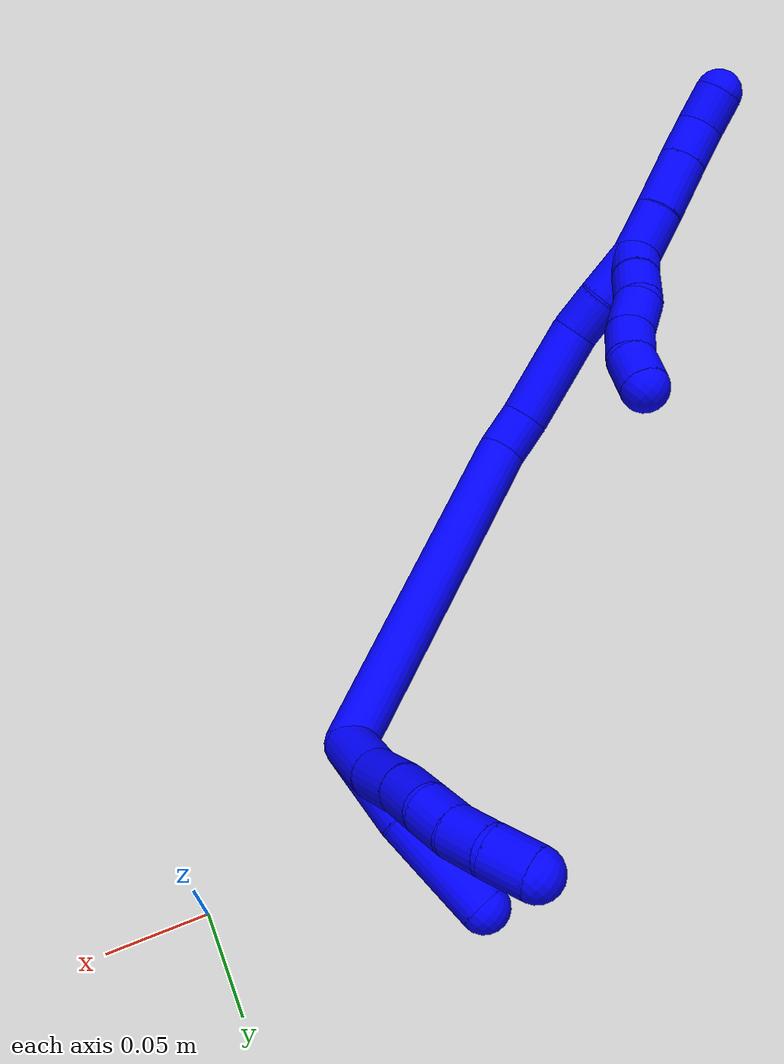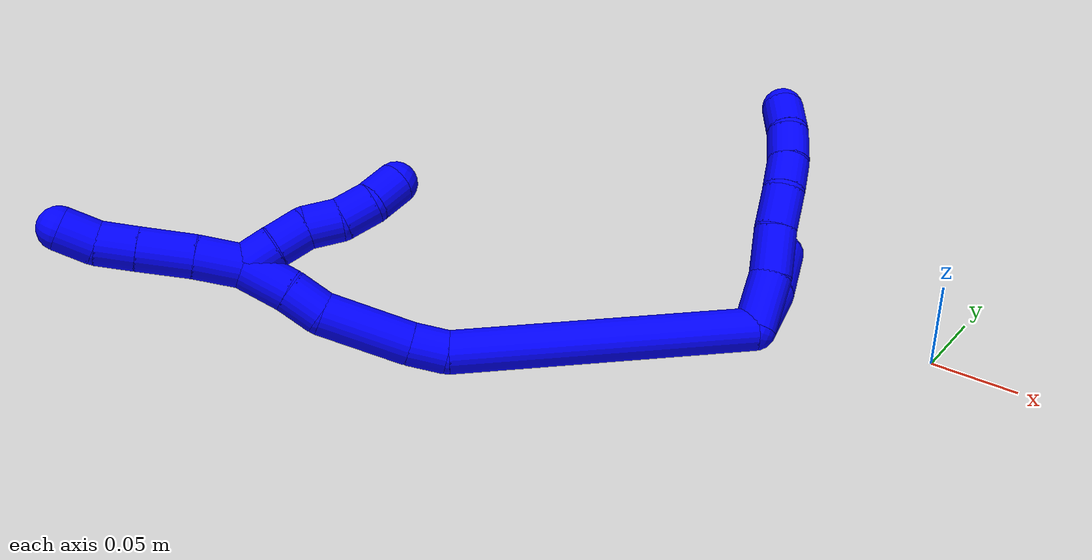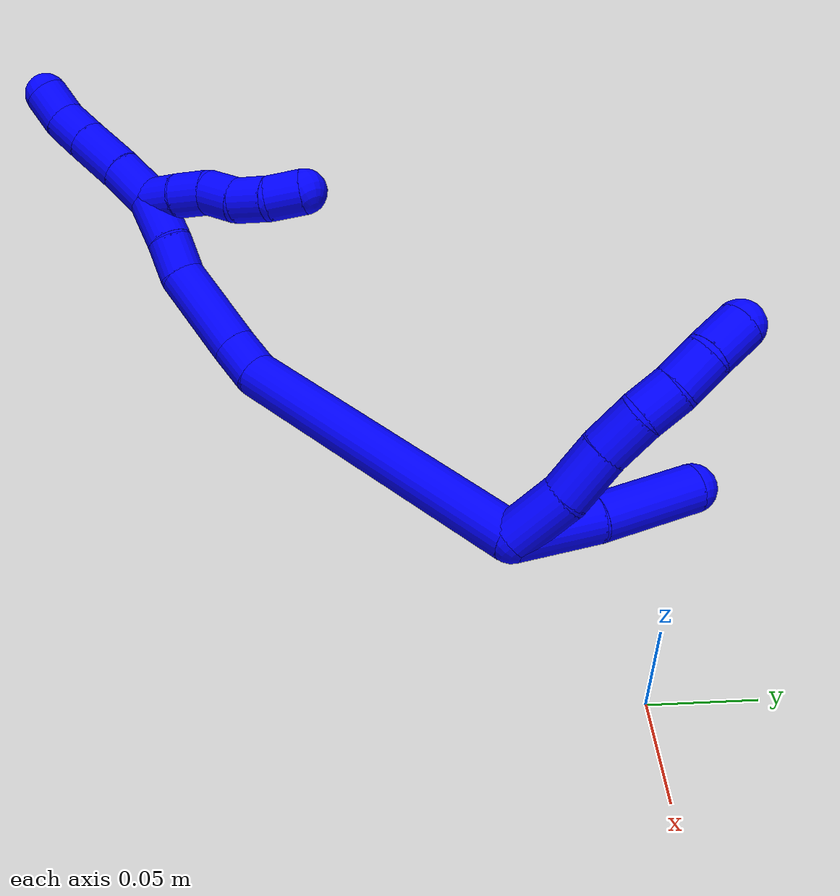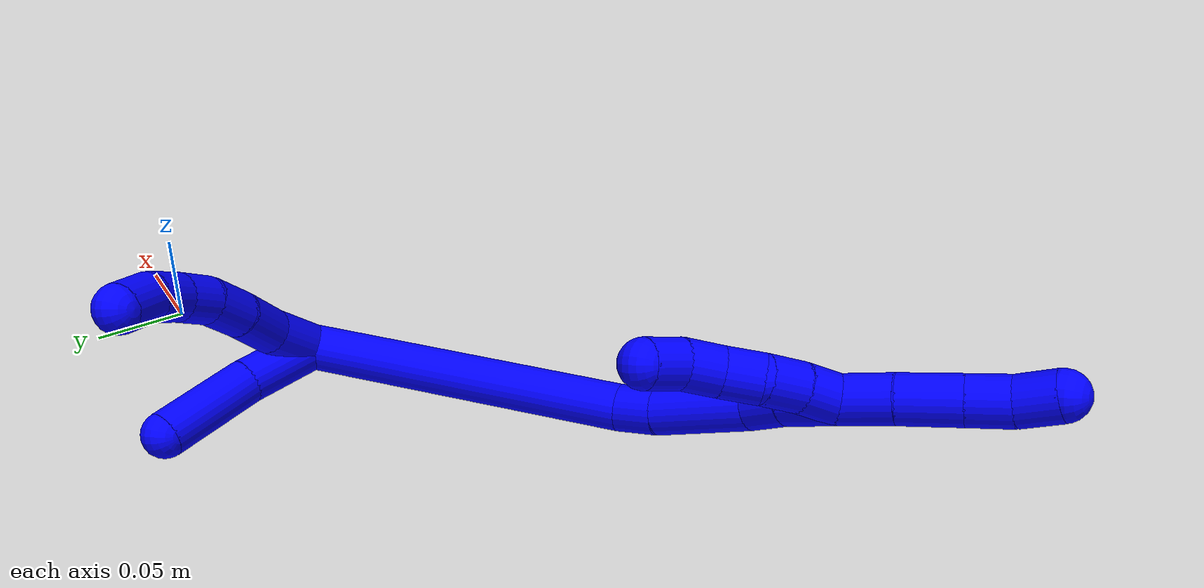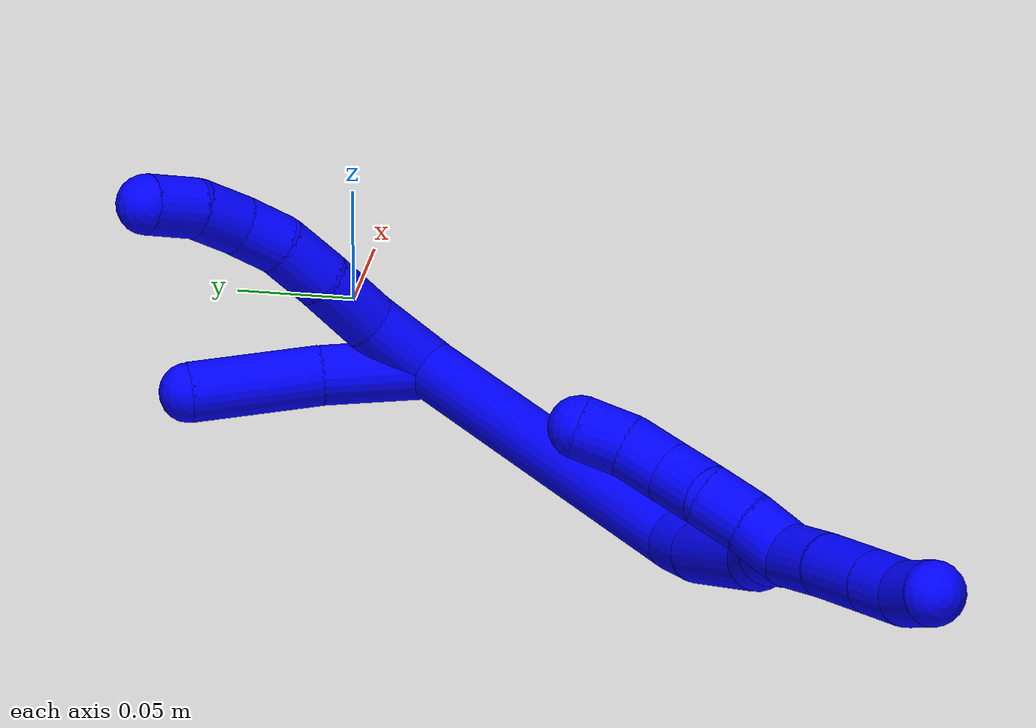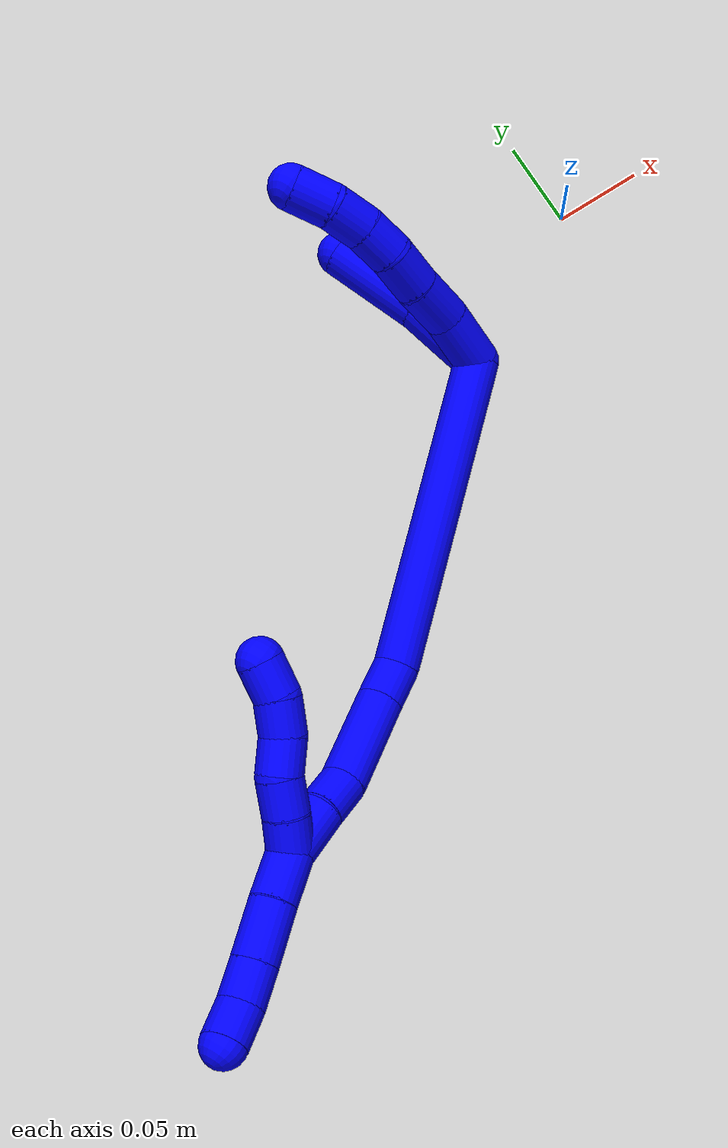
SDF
<sdf version="1.7">
 <world name="default">
  <model name="photoneo_s_sensor">
   <static>1</static>
   <pose>0 0 2 1.57079 1.57079 3.14159</pose>
   <link name="link">
    <inertial><mass>0.1</mass></inertial>
    <sensor name="sensor" type="depth">
     <update_rate>30</update_rate>
     <camera>
      <horizontal_fov>1.22</horizontal_fov>
      <image><width>1920</width><height>1200</height><format>B8G8R8</format></image>
      <clip><near>0.1</near><far>4</far></clip>
      <depth_camera><output>points</output></depth_camera>
     </camera>
     <plugin name="camera_plugin" filename="libgazebo_ros_depth_camera.so">
      <baseline>0.2</baseline>
      <alwaysOn>1</alwaysOn>
      <updateRate>0.0</updateRate>
      <cameraName>camera_ir</cameraName>
      <imageTopicName>/camera/color/image_raw</imageTopicName>
      <cameraInfoTopicName>/camera/color/camera_info</cameraInfoTopicName>
      <depthImageTopicName>/camera/depth/image_raw</depthImageTopicName>
      <depthImageCameraInfoTopicName>/camera/depth/camera_info</depthImageCameraInfoTopicName>
      <pointCloudTopicName>/camera/depth/points</pointCloudTopicName>
      <frameName>fr_optical</frameName>
      <pointCloudCutoff>0.1</pointCloudCutoff>
      <pointCloudCutoffMax>2.0</pointCloudCutoffMax>
      <distortionK1>0</distortionK1>
      <distortionK2>0</distortionK2>
      <distortionK3>0</distortionK3>
      <distortionT1>0</distortionT1>
      <distortionT2>0</distortionT2>
      <CxPrime>0</CxPrime>
      <Cx>0</Cx>
      <Cy>0</Cy>
      <focalLength>0</focalLength>
      <hackBaseline>0</hackBaseline>
     </plugin>
    </sensor>
   </link>
  </model>
  <model name="bin">
   <static>1</static>
   <link name="bottom">
    <collision name="collision-bottom">
     <pose>0 0 -0.01 0 -0 0</pose>
     <geometry><box><size>0.8 0.6 0.02</size></box></geometry>
     <surface>
      <friction><ode><mu>100</mu><mu2>100</mu2></ode></friction>
      <contact><collide_bitmask>65535</collide_bitmask></contact>
     </surface>
    </collision>
   </link>
   <link name="west_wall">
    <collision name="collision-west_wall">
     <pose>-0.41 0 0.1 0 -0 0</pose>
     <geometry><box><size>0.02 0.6 0.2</size></box></geometry>
     <surface>
      <friction><ode><mu>100</mu><mu2>100</mu2></ode></friction>
      <contact><collide_bitmask>65535</collide_bitmask></contact>
     </surface>
    </collision>
   </link>
   <link name="east_wall">
    <collision name="collision-east_wall">
     <pose>0.41 0 0.1 0 -0 0</pose>
     <geometry><box><size>0.02 0.6 0.2</size></box></geometry>
     <surface>
      <friction><ode><mu>100</mu><mu2>100</mu2></ode></friction>
      <contact><collide_bitmask>65535</collide_bitmask></contact>
     </surface>
    </collision>
   </link>
   <link name="south_wall">
    <collision name="collision-south_wall">
     <pose>0 -0.31 0.1 0 -0 0</pose>
     <geometry><box><size>0.8 0.02 0.2</size></box></geometry>
     <surface>
      <friction><ode><mu>100</mu><mu2>100</mu2></ode></friction>
      <contact><collide_bitmask>65535</collide_bitmask></contact>
     </surface>
    </collision>
   </link>
   <link name="north_wall">
    <collision name="collision-north_wall">
     <pose>0 0.31 0.1 0 -0 0</pose>
     <geometry><box><size>0.8 0.02 0.2</size></box></geometry>
     <surface>
      <friction><ode><mu>100</mu><mu2>100</mu2></ode></friction>
      <contact><collide_bitmask>65535</collide_bitmask></contact>
     </surface>
    </collision>
   </link>
  </model>
  <model name="1">
   <static>0</static>
   <link name="1">
    <collision name="collision-cylinder-e_1_2_8">
     <pose>0.01566 0.005448 0.000631 -1.45556 1.23395 -1.12721</pose>
     <geometry><cylinder><radius>0.0125</radius><length>0.033184</length></cylinder></geometry>
     <surface>
      <friction><ode><mu>1.16</mu><mu2>1.16</mu2><slip1>0</slip1><slip2>0</slip2></ode></friction>
      <contact><ode><kp>1e+06</kp><kd>1</kd><max_vel>0</max_vel><min_depth>0.001</min_depth></ode></contact>
     </surface>
    </collision>
    <visual name="visual-cylinder-e_1_2_8">
     <pose>0.01566 0.005448 0.000631 -1.45556 1.23395 -1.12721</pose>
     <geometry><cylinder><radius>0.0125</radius><length>0.033184</length></cylinder></geometry>
     <material><ambient>0 0 1 1</ambient></material>
    </visual>
    <collision name="collision-cylinder-e_2_8_9">
     <pose>0.044769 0.014759 0.004468 -0.87799 1.21347 -0.630097</pose>
     <geometry><cylinder><radius>0.0125</radius><length>0.028714</length></cylinder></geometry>
     <surface>
      <friction><ode><mu>1.16</mu><mu2>1.16</mu2><slip1>0</slip1><slip2>0</slip2></ode></friction>
      <contact><ode><kp>1e+06</kp><kd>1</kd><max_vel>0</max_vel><min_depth>0.001</min_depth></ode></contact>
     </surface>
    </collision>
    <visual name="visual-cylinder-e_2_8_9">
     <pose>0.044769 0.014759 0.004468 -0.87799 1.21347 -0.630097</pose>
     <geometry><cylinder><radius>0.0125</radius><length>0.028714</length></cylinder></geometry>
     <material><ambient>0 0 1 1</ambient></material>
    </visual>
    <collision name="collision-cylinder-e_3_9_10">
     <pose>0.069644 0.022293 0.009204 -1.17613 1.23596 -0.885215</pose>
     <geometry><cylinder><radius>0.0125</radius><length>0.024193</length></cylinder></geometry>
     <surface>
      <friction><ode><mu>1.16</mu><mu2>1.16</mu2><slip1>0</slip1><slip2>0</slip2></ode></friction>
      <contact><ode><kp>1e+06</kp><kd>1</kd><max_vel>0</max_vel><min_depth>0.001</min_depth></ode></contact>
     </surface>
    </collision>
    <visual name="visual-cylinder-e_3_9_10">
     <pose>0.069644 0.022293 0.009204 -1.17613 1.23596 -0.885215</pose>
     <geometry><cylinder><radius>0.0125</radius><length>0.024193</length></cylinder></geometry>
     <material><ambient>0 0 1 1</ambient></material>
    </visual>
    <collision name="collision-cylinder-e_4_10_11">
     <pose>0.08963 0.031082 0.011902 -1.34627 1.02053 -0.83954</pose>
     <geometry><cylinder><radius>0.0125</radius><length>0.020088</length></cylinder></geometry>
     <surface>
      <friction><ode><mu>1.16</mu><mu2>1.16</mu2><slip1>0</slip1><slip2>0</slip2></ode></friction>
      <contact><ode><kp>1e+06</kp><kd>1</kd><max_vel>0</max_vel><min_depth>0.001</min_depth></ode></contact>
     </surface>
    </collision>
    <visual name="visual-cylinder-e_4_10_11">
     <pose>0.08963 0.031082 0.011902 -1.34627 1.02053 -0.83954</pose>
     <geometry><cylinder><radius>0.0125</radius><length>0.020088</length></cylinder></geometry>
     <material><ambient>0 0 1 1</ambient></material>
    </visual>
    <collision name="collision-cylinder-e_5_11_12">
     <pose>0.106583 0.042016 0.015751 -1.13884 0.919137 -0.613629</pose>
     <geometry><cylinder><radius>0.0125</radius><length>0.021107</length></cylinder></geometry>
     <surface>
      <friction><ode><mu>1.16</mu><mu2>1.16</mu2><slip1>0</slip1><slip2>0</slip2></ode></friction>
      <contact><ode><kp>1e+06</kp><kd>1</kd><max_vel>0</max_vel><min_depth>0.001</min_depth></ode></contact>
     </surface>
    </collision>
    <visual name="visual-cylinder-e_5_11_12">
     <pose>0.106583 0.042016 0.015751 -1.13884 0.919137 -0.613629</pose>
     <geometry><cylinder><radius>0.0125</radius><length>0.021107</length></cylinder></geometry>
     <material><ambient>0 0 1 1</ambient></material>
    </visual>
    <collision name="collision-cylinder-e_6_12_6">
     <pose>0.122017 0.056175 0.021544 -1.21373 0.669029 -0.473564</pose>
     <geometry><cylinder><radius>0.0125</radius><length>0.022713</length></cylinder></geometry>
     <surface>
      <friction><ode><mu>1.16</mu><mu2>1.16</mu2><slip1>0</slip1><slip2>0</slip2></ode></friction>
      <contact><ode><kp>1e+06</kp><kd>1</kd><max_vel>0</max_vel><min_depth>0.001</min_depth></ode></contact>
     </surface>
    </collision>
    <visual name="visual-cylinder-e_6_12_6">
     <pose>0.122017 0.056175 0.021544 -1.21373 0.669029 -0.473564</pose>
     <geometry><cylinder><radius>0.0125</radius><length>0.022713</length></cylinder></geometry>
     <material><ambient>0 0 1 1</ambient></material>
    </visual>
    <collision name="collision-cylinder-e_1_2_13">
     <pose>0.011017 0.019135 -0.004279 -1.79081 0.511909 -0.631504</pose>
     <geometry><cylinder><radius>0.0125</radius><length>0.044982</length></cylinder></geometry>
     <surface>
      <friction><ode><mu>1.16</mu><mu2>1.16</mu2><slip1>0</slip1><slip2>0</slip2></ode></friction>
      <contact><ode><kp>1e+06</kp><kd>1</kd><max_vel>0</max_vel><min_depth>0.001</min_depth></ode></contact>
     </surface>
    </collision>
    <visual name="visual-cylinder-e_1_2_13">
     <pose>0.011017 0.019135 -0.004279 -1.79081 0.511909 -0.631504</pose>
     <geometry><cylinder><radius>0.0125</radius><length>0.044982</length></cylinder></geometry>
     <material><ambient>0 0 1 1</ambient></material>
    </visual>
    <collision name="collision-cylinder-e_2_13_5">
     <pose>0.0344 0.062728 -0.010936 -1.66771 0.466221 -0.511787</pose>
     <geometry><cylinder><radius>0.0125</radius><length>0.055018</length></cylinder></geometry>
     <surface>
      <friction><ode><mu>1.16</mu><mu2>1.16</mu2><slip1>0</slip1><slip2>0</slip2></ode></friction>
      <contact><ode><kp>1e+06</kp><kd>1</kd><max_vel>0</max_vel><min_depth>0.001</min_depth></ode></contact>
     </surface>
    </collision>
    <visual name="visual-cylinder-e_2_13_5">
     <pose>0.0344 0.062728 -0.010936 -1.66771 0.466221 -0.511787</pose>
     <geometry><cylinder><radius>0.0125</radius><length>0.055018</length></cylinder></geometry>
     <material><ambient>0 0 1 1</ambient></material>
    </visual>
    <collision name="collision-cylinder-e_1_2_14">
     <pose>-0.037503 -0.010508 0.078975 0.132285 -0.439953 -0.029619</pose>
     <geometry><cylinder><radius>0.0125</radius><length>0.176112</length></cylinder></geometry>
     <surface>
      <friction><ode><mu>1.16</mu><mu2>1.16</mu2><slip1>0</slip1><slip2>0</slip2></ode></friction>
      <contact><ode><kp>1e+06</kp><kd>1</kd><max_vel>0</max_vel><min_depth>0.001</min_depth></ode></contact>
     </surface>
    </collision>
    <visual name="visual-cylinder-e_1_2_14">
     <pose>-0.037503 -0.010508 0.078975 0.132285 -0.439953 -0.029619</pose>
     <geometry><cylinder><radius>0.0125</radius><length>0.176112</length></cylinder></geometry>
     <material><ambient>0 0 1 1</ambient></material>
    </visual>
    <collision name="collision-cylinder-e_2_14_15">
     <pose>-0.07657 -0.021828 0.168734 0.075059 -0.143657 -0.005403</pose>
     <geometry><cylinder><radius>0.0125</radius><length>0.021855</length></cylinder></geometry>
     <surface>
      <friction><ode><mu>1.16</mu><mu2>1.16</mu2><slip1>0</slip1><slip2>0</slip2></ode></friction>
      <contact><ode><kp>1e+06</kp><kd>1</kd><max_vel>0</max_vel><min_depth>0.001</min_depth></ode></contact>
     </surface>
    </collision>
    <visual name="visual-cylinder-e_2_14_15">
     <pose>-0.07657 -0.021828 0.168734 0.075059 -0.143657 -0.005403</pose>
     <geometry><cylinder><radius>0.0125</radius><length>0.021855</length></cylinder></geometry>
     <material><ambient>0 0 1 1</ambient></material>
    </visual>
    <collision name="collision-cylinder-e_3_15_16">
     <pose>-0.078719 -0.027018 0.205209 0.168813 -0.022407 -0.001896</pose>
     <geometry><cylinder><radius>0.0125</radius><length>0.052136</length></cylinder></geometry>
     <surface>
      <friction><ode><mu>1.16</mu><mu2>1.16</mu2><slip1>0</slip1><slip2>0</slip2></ode></friction>
      <contact><ode><kp>1e+06</kp><kd>1</kd><max_vel>0</max_vel><min_depth>0.001</min_depth></ode></contact>
     </surface>
    </collision>
    <visual name="visual-cylinder-e_3_15_16">
     <pose>-0.078719 -0.027018 0.205209 0.168813 -0.022407 -0.001896</pose>
     <geometry><cylinder><radius>0.0125</radius><length>0.052136</length></cylinder></geometry>
     <material><ambient>0 0 1 1</ambient></material>
    </visual>
    <collision name="collision-cylinder-e_4_16_17">
     <pose>-0.076701 -0.032138 0.241404 0.070519 0.242203 0.008585</pose>
     <geometry><cylinder><radius>0.0125</radius><length>0.021692</length></cylinder></geometry>
     <surface>
      <friction><ode><mu>1.16</mu><mu2>1.16</mu2><slip1>0</slip1><slip2>0</slip2></ode></friction>
      <contact><ode><kp>1e+06</kp><kd>1</kd><max_vel>0</max_vel><min_depth>0.001</min_depth></ode></contact>
     </surface>
    </collision>
    <visual name="visual-cylinder-e_4_16_17">
     <pose>-0.076701 -0.032138 0.241404 0.070519 0.242203 0.008585</pose>
     <geometry><cylinder><radius>0.0125</radius><length>0.021692</length></cylinder></geometry>
     <material><ambient>0 0 1 1</ambient></material>
    </visual>
    <collision name="collision-cylinder-e_5_17_1">
     <pose>-0.072393 -0.033382 0.265897 0.035827 0.121309 0.002176</pose>
     <geometry><cylinder><radius>0.0125</radius><length>0.028204</length></cylinder></geometry>
     <surface>
      <friction><ode><mu>1.16</mu><mu2>1.16</mu2><slip1>0</slip1><slip2>0</slip2></ode></friction>
      <contact><ode><kp>1e+06</kp><kd>1</kd><max_vel>0</max_vel><min_depth>0.001</min_depth></ode></contact>
     </surface>
    </collision>
    <visual name="visual-cylinder-e_5_17_1">
     <pose>-0.072393 -0.033382 0.265897 0.035827 0.121309 0.002176</pose>
     <geometry><cylinder><radius>0.0125</radius><length>0.028204</length></cylinder></geometry>
     <material><ambient>0 0 1 1</ambient></material>
    </visual>
    <collision name="collision-cylinder-e_1_1_18">
     <pose>-0.062673 -0.031708 0.274314 -2.76949 0.92962 -2.4234</pose>
     <geometry><cylinder><radius>0.0125</radius><length>0.02</length></cylinder></geometry>
     <surface>
      <friction><ode><mu>1.16</mu><mu2>1.16</mu2><slip1>0</slip1><slip2>0</slip2></ode></friction>
      <contact><ode><kp>1e+06</kp><kd>1</kd><max_vel>0</max_vel><min_depth>0.001</min_depth></ode></contact>
     </surface>
    </collision>
    <visual name="visual-cylinder-e_1_1_18">
     <pose>-0.062673 -0.031708 0.274314 -2.76949 0.92962 -2.4234</pose>
     <geometry><cylinder><radius>0.0125</radius><length>0.02</length></cylinder></geometry>
     <material><ambient>0 0 1 1</ambient></material>
    </visual>
    <collision name="collision-cylinder-e_2_18_19">
     <pose>-0.046972 -0.026455 0.263136 -2.6394 0.876846 -2.14037</pose>
     <geometry><cylinder><radius>0.0125</radius><length>0.02</length></cylinder></geometry>
     <surface>
      <friction><ode><mu>1.16</mu><mu2>1.16</mu2><slip1>0</slip1><slip2>0</slip2></ode></friction>
      <contact><ode><kp>1e+06</kp><kd>1</kd><max_vel>0</max_vel><min_depth>0.001</min_depth></ode></contact>
     </surface>
    </collision>
    <visual name="visual-cylinder-e_2_18_19">
     <pose>-0.046972 -0.026455 0.263136 -2.6394 0.876846 -2.14037</pose>
     <geometry><cylinder><radius>0.0125</radius><length>0.02</length></cylinder></geometry>
     <material><ambient>0 0 1 1</ambient></material>
    </visual>
    <collision name="collision-cylinder-e_3_19_20">
     <pose>-0.033712 -0.02123 0.249509 -2.88008 0.5911 -2.32614</pose>
     <geometry><cylinder><radius>0.0125</radius><length>0.02</length></cylinder></geometry>
     <surface>
      <friction><ode><mu>1.16</mu><mu2>1.16</mu2><slip1>0</slip1><slip2>0</slip2></ode></friction>
      <contact><ode><kp>1e+06</kp><kd>1</kd><max_vel>0</max_vel><min_depth>0.001</min_depth></ode></contact>
     </surface>
    </collision>
    <visual name="visual-cylinder-e_3_19_20">
     <pose>-0.033712 -0.02123 0.249509 -2.88008 0.5911 -2.32614</pose>
     <geometry><cylinder><radius>0.0125</radius><length>0.02</length></cylinder></geometry>
     <material><ambient>0 0 1 1</ambient></material>
    </visual>
    <collision name="collision-cylinder-e_4_20_21">
     <pose>-0.020693 -0.016039 0.235548 -2.66803 0.839969 -2.15074</pose>
     <geometry><cylinder><radius>0.0125</radius><length>0.02</length></cylinder></geometry>
     <surface>
      <friction><ode><mu>1.16</mu><mu2>1.16</mu2><slip1>0</slip1><slip2>0</slip2></ode></friction>
      <contact><ode><kp>1e+06</kp><kd>1</kd><max_vel>0</max_vel><min_depth>0.001</min_depth></ode></contact>
     </surface>
    </collision>
    <visual name="visual-cylinder-e_4_20_21">
     <pose>-0.020693 -0.016039 0.235548 -2.66803 0.839969 -2.15074</pose>
     <geometry><cylinder><radius>0.0125</radius><length>0.02</length></cylinder></geometry>
     <material><ambient>0 0 1 1</ambient></material>
    </visual>
    <collision name="collision-cylinder-e_5_21_4">
     <pose>-0.005745 -0.007703 0.225642 -2.21391 0.84825 -1.46852</pose>
     <geometry><cylinder><radius>0.0125</radius><length>0.02</length></cylinder></geometry>
     <surface>
      <friction><ode><mu>1.16</mu><mu2>1.16</mu2><slip1>0</slip1><slip2>0</slip2></ode></friction>
      <contact><ode><kp>1e+06</kp><kd>1</kd><max_vel>0</max_vel><min_depth>0.001</min_depth></ode></contact>
     </surface>
    </collision>
    <visual name="visual-cylinder-e_5_21_4">
     <pose>-0.005745 -0.007703 0.225642 -2.21391 0.84825 -1.46852</pose>
     <geometry><cylinder><radius>0.0125</radius><length>0.02</length></cylinder></geometry>
     <material><ambient>0 0 1 1</ambient></material>
    </visual>
    <collision name="collision-cylinder-e_1_1_22">
     <pose>-0.072845 -0.036547 0.292947 0.201232 -0.160481 -0.016236</pose>
     <geometry><cylinder><radius>0.0125</radius><length>0.027006</length></cylinder></geometry>
     <surface>
      <friction><ode><mu>1.16</mu><mu2>1.16</mu2><slip1>0</slip1><slip2>0</slip2></ode></friction>
      <contact><ode><kp>1e+06</kp><kd>1</kd><max_vel>0</max_vel><min_depth>0.001</min_depth></ode></contact>
     </surface>
    </collision>
    <visual name="visual-cylinder-e_1_1_22">
     <pose>-0.072845 -0.036547 0.292947 0.201232 -0.160481 -0.016236</pose>
     <geometry><cylinder><radius>0.0125</radius><length>0.027006</length></cylinder></geometry>
     <material><ambient>0 0 1 1</ambient></material>
    </visual>
    <collision name="collision-cylinder-e_2_22_23">
     <pose>-0.078433 -0.042276 0.320712 0.205472 -0.224524 -0.023245</pose>
     <geometry><cylinder><radius>0.0125</radius><length>0.030815</length></cylinder></geometry>
     <surface>
      <friction><ode><mu>1.16</mu><mu2>1.16</mu2><slip1>0</slip1><slip2>0</slip2></ode></friction>
      <contact><ode><kp>1e+06</kp><kd>1</kd><max_vel>0</max_vel><min_depth>0.001</min_depth></ode></contact>
     </surface>
    </collision>
    <visual name="visual-cylinder-e_2_22_23">
     <pose>-0.078433 -0.042276 0.320712 0.205472 -0.224524 -0.023245</pose>
     <geometry><cylinder><radius>0.0125</radius><length>0.030815</length></cylinder></geometry>
     <material><ambient>0 0 1 1</ambient></material>
    </visual>
    <collision name="collision-cylinder-e_3_23_24">
     <pose>-0.084134 -0.047361 0.345729 0.193483 -0.212834 -0.020732</pose>
     <geometry><cylinder><radius>0.0125</radius><length>0.021502</length></cylinder></geometry>
     <surface>
      <friction><ode><mu>1.16</mu><mu2>1.16</mu2><slip1>0</slip1><slip2>0</slip2></ode></friction>
      <contact><ode><kp>1e+06</kp><kd>1</kd><max_vel>0</max_vel><min_depth>0.001</min_depth></ode></contact>
     </surface>
    </collision>
    <visual name="visual-cylinder-e_3_23_24">
     <pose>-0.084134 -0.047361 0.345729 0.193483 -0.212834 -0.020732</pose>
     <geometry><cylinder><radius>0.0125</radius><length>0.021502</length></cylinder></geometry>
     <material><ambient>0 0 1 1</ambient></material>
    </visual>
    <collision name="collision-cylinder-e_4_24_3">
     <pose>-0.086065 -0.051605 0.366132 0.216832 0.032865 0.003577</pose>
     <geometry><cylinder><radius>0.0125</radius><length>0.020677</length></cylinder></geometry>
     <surface>
      <friction><ode><mu>1.16</mu><mu2>1.16</mu2><slip1>0</slip1><slip2>0</slip2></ode></friction>
      <contact><ode><kp>1e+06</kp><kd>1</kd><max_vel>0</max_vel><min_depth>0.001</min_depth></ode></contact>
     </surface>
    </collision>
    <visual name="visual-cylinder-e_4_24_3">
     <pose>-0.086065 -0.051605 0.366132 0.216832 0.032865 0.003577</pose>
     <geometry><cylinder><radius>0.0125</radius><length>0.020677</length></cylinder></geometry>
     <material><ambient>0 0 1 1</ambient></material>
    </visual>
    <collision name="collision-sphere-3">
     <pose>-0.085725 -0.053828 0.376223 0 -0 0</pose>
     <geometry><sphere><radius>0.0125</radius></sphere></geometry>
     <surface>
      <friction><ode><mu>1.16</mu><mu2>1.16</mu2><slip1>0</slip1><slip2>0</slip2></ode></friction>
      <contact><ode><kp>1e+06</kp><kd>1</kd><max_vel>0</max_vel><min_depth>0.001</min_depth></ode></contact>
     </surface>
    </collision>
    <visual name="visual-sphere-3">
     <pose>-0.085725 -0.053828 0.376223 0 -0 0</pose>
     <geometry><sphere><radius>0.0125</radius></sphere></geometry>
     <material><ambient>0 0 1 1</ambient></material>
    </visual>
    <collision name="collision-sphere-24">
     <pose>-0.086405 -0.049382 0.356041 0 -0 0</pose>
     <geometry><sphere><radius>0.0125</radius></sphere></geometry>
     <surface>
      <friction><ode><mu>1.16</mu><mu2>1.16</mu2><slip1>0</slip1><slip2>0</slip2></ode></friction>
      <contact><ode><kp>1e+06</kp><kd>1</kd><max_vel>0</max_vel><min_depth>0.001</min_depth></ode></contact>
     </surface>
    </collision>
    <visual name="visual-sphere-24">
     <pose>-0.086405 -0.049382 0.356041 0 -0 0</pose>
     <geometry><sphere><radius>0.0125</radius></sphere></geometry>
     <material><ambient>0 0 1 1</ambient></material>
    </visual>
    <collision name="collision-sphere-23">
     <pose>-0.081863 -0.045341 0.335417 0 -0 0</pose>
     <geometry><sphere><radius>0.0125</radius></sphere></geometry>
     <surface>
      <friction><ode><mu>1.16</mu><mu2>1.16</mu2><slip1>0</slip1><slip2>0</slip2></ode></friction>
      <contact><ode><kp>1e+06</kp><kd>1</kd><max_vel>0</max_vel><min_depth>0.001</min_depth></ode></contact>
     </surface>
    </collision>
    <visual name="visual-sphere-23">
     <pose>-0.081863 -0.045341 0.335417 0 -0 0</pose>
     <geometry><sphere><radius>0.0125</radius></sphere></geometry>
     <material><ambient>0 0 1 1</ambient></material>
    </visual>
    <collision name="collision-sphere-22">
     <pose>-0.075002 -0.039212 0.306008 0 -0 0</pose>
     <geometry><sphere><radius>0.0125</radius></sphere></geometry>
     <surface>
      <friction><ode><mu>1.16</mu><mu2>1.16</mu2><slip1>0</slip1><slip2>0</slip2></ode></friction>
      <contact><ode><kp>1e+06</kp><kd>1</kd><max_vel>0</max_vel><min_depth>0.001</min_depth></ode></contact>
     </surface>
    </collision>
    <visual name="visual-sphere-22">
     <pose>-0.075002 -0.039212 0.306008 0 -0 0</pose>
     <geometry><sphere><radius>0.0125</radius></sphere></geometry>
     <material><ambient>0 0 1 1</ambient></material>
    </visual>
    <collision name="collision-sphere-4">
     <pose>0.001756 -0.002411 0.221676 0 -0 0</pose>
     <geometry><sphere><radius>0.0125</radius></sphere></geometry>
     <surface>
      <friction><ode><mu>1.16</mu><mu2>1.16</mu2><slip1>0</slip1><slip2>0</slip2></ode></friction>
      <contact><ode><kp>1e+06</kp><kd>1</kd><max_vel>0</max_vel><min_depth>0.001</min_depth></ode></contact>
     </surface>
    </collision>
    <visual name="visual-sphere-4">
     <pose>0.001756 -0.002411 0.221676 0 -0 0</pose>
     <geometry><sphere><radius>0.0125</radius></sphere></geometry>
     <material><ambient>0 0 1 1</ambient></material>
    </visual>
    <collision name="collision-sphere-21">
     <pose>-0.013247 -0.012995 0.229607 0 -0 0</pose>
     <geometry><sphere><radius>0.0125</radius></sphere></geometry>
     <surface>
      <friction><ode><mu>1.16</mu><mu2>1.16</mu2><slip1>0</slip1><slip2>0</slip2></ode></friction>
      <contact><ode><kp>1e+06</kp><kd>1</kd><max_vel>0</max_vel><min_depth>0.001</min_depth></ode></contact>
     </surface>
    </collision>
    <visual name="visual-sphere-21">
     <pose>-0.013247 -0.012995 0.229607 0 -0 0</pose>
     <geometry><sphere><radius>0.0125</radius></sphere></geometry>
     <material><ambient>0 0 1 1</ambient></material>
    </visual>
    <collision name="collision-sphere-20">
     <pose>-0.028139 -0.019083 0.241488 0 -0 0</pose>
     <geometry><sphere><radius>0.0125</radius></sphere></geometry>
     <surface>
      <friction><ode><mu>1.16</mu><mu2>1.16</mu2><slip1>0</slip1><slip2>0</slip2></ode></friction>
      <contact><ode><kp>1e+06</kp><kd>1</kd><max_vel>0</max_vel><min_depth>0.001</min_depth></ode></contact>
     </surface>
    </collision>
    <visual name="visual-sphere-20">
     <pose>-0.028139 -0.019083 0.241488 0 -0 0</pose>
     <geometry><sphere><radius>0.0125</radius></sphere></geometry>
     <material><ambient>0 0 1 1</ambient></material>
    </visual>
    <collision name="collision-sphere-12">
     <pose>0.114974 0.047829 0.018431 0 -0 0</pose>
     <geometry><sphere><radius>0.0125</radius></sphere></geometry>
     <surface>
      <friction><ode><mu>1.16</mu><mu2>1.16</mu2><slip1>0</slip1><slip2>0</slip2></ode></friction>
      <contact><ode><kp>1e+06</kp><kd>1</kd><max_vel>0</max_vel><min_depth>0.001</min_depth></ode></contact>
     </surface>
    </collision>
    <visual name="visual-sphere-12">
     <pose>0.114974 0.047829 0.018431 0 -0 0</pose>
     <geometry><sphere><radius>0.0125</radius></sphere></geometry>
     <material><ambient>0 0 1 1</ambient></material>
    </visual>
    <collision name="collision-sphere-11">
     <pose>0.098192 0.036203 0.013071 0 -0 0</pose>
     <geometry><sphere><radius>0.0125</radius></sphere></geometry>
     <surface>
      <friction><ode><mu>1.16</mu><mu2>1.16</mu2><slip1>0</slip1><slip2>0</slip2></ode></friction>
      <contact><ode><kp>1e+06</kp><kd>1</kd><max_vel>0</max_vel><min_depth>0.001</min_depth></ode></contact>
     </surface>
    </collision>
    <visual name="visual-sphere-11">
     <pose>0.098192 0.036203 0.013071 0 -0 0</pose>
     <geometry><sphere><radius>0.0125</radius></sphere></geometry>
     <material><ambient>0 0 1 1</ambient></material>
    </visual>
    <collision name="collision-sphere-10">
     <pose>0.081069 0.025962 0.010733 0 -0 0</pose>
     <geometry><sphere><radius>0.0125</radius></sphere></geometry>
     <surface>
      <friction><ode><mu>1.16</mu><mu2>1.16</mu2><slip1>0</slip1><slip2>0</slip2></ode></friction>
      <contact><ode><kp>1e+06</kp><kd>1</kd><max_vel>0</max_vel><min_depth>0.001</min_depth></ode></contact>
     </surface>
    </collision>
    <visual name="visual-sphere-10">
     <pose>0.081069 0.025962 0.010733 0 -0 0</pose>
     <geometry><sphere><radius>0.0125</radius></sphere></geometry>
     <material><ambient>0 0 1 1</ambient></material>
    </visual>
    <collision name="collision-sphere-9">
     <pose>0.058219 0.018623 0.007676 0 -0 0</pose>
     <geometry><sphere><radius>0.0125</radius></sphere></geometry>
     <surface>
      <friction><ode><mu>1.16</mu><mu2>1.16</mu2><slip1>0</slip1><slip2>0</slip2></ode></friction>
      <contact><ode><kp>1e+06</kp><kd>1</kd><max_vel>0</max_vel><min_depth>0.001</min_depth></ode></contact>
     </surface>
    </collision>
    <visual name="visual-sphere-9">
     <pose>0.058219 0.018623 0.007676 0 -0 0</pose>
     <geometry><sphere><radius>0.0125</radius></sphere></geometry>
     <material><ambient>0 0 1 1</ambient></material>
    </visual>
    <collision name="collision-sphere-2">
     <geometry><sphere><radius>0.0125</radius></sphere></geometry>
     <surface>
      <friction><ode><mu>1.16</mu><mu2>1.16</mu2><slip1>0</slip1><slip2>0</slip2></ode></friction>
      <contact><ode><kp>1e+06</kp><kd>1</kd><max_vel>0</max_vel><min_depth>0.001</min_depth></ode></contact>
     </surface>
    </collision>
    <visual name="visual-sphere-2">
     <geometry><sphere><radius>0.0125</radius></sphere></geometry>
     <material><ambient>0 0 1 1</ambient></material>
    </visual>
    <collision name="collision-sphere-19">
     <pose>-0.039284 -0.023376 0.25753 0 -0 0</pose>
     <geometry><sphere><radius>0.0125</radius></sphere></geometry>
     <surface>
      <friction><ode><mu>1.16</mu><mu2>1.16</mu2><slip1>0</slip1><slip2>0</slip2></ode></friction>
      <contact><ode><kp>1e+06</kp><kd>1</kd><max_vel>0</max_vel><min_depth>0.001</min_depth></ode></contact>
     </surface>
    </collision>
    <visual name="visual-sphere-19">
     <pose>-0.039284 -0.023376 0.25753 0 -0 0</pose>
     <geometry><sphere><radius>0.0125</radius></sphere></geometry>
     <material><ambient>0 0 1 1</ambient></material>
    </visual>
    <collision name="collision-sphere-8">
     <pose>0.031319 0.010895 0.001261 0 -0 0</pose>
     <geometry><sphere><radius>0.0125</radius></sphere></geometry>
     <surface>
      <friction><ode><mu>1.16</mu><mu2>1.16</mu2><slip1>0</slip1><slip2>0</slip2></ode></friction>
      <contact><ode><kp>1e+06</kp><kd>1</kd><max_vel>0</max_vel><min_depth>0.001</min_depth></ode></contact>
     </surface>
    </collision>
    <visual name="visual-sphere-8">
     <pose>0.031319 0.010895 0.001261 0 -0 0</pose>
     <geometry><sphere><radius>0.0125</radius></sphere></geometry>
     <material><ambient>0 0 1 1</ambient></material>
    </visual>
    <collision name="collision-sphere-6">
     <pose>0.129061 0.064522 0.024658 0 -0 0</pose>
     <geometry><sphere><radius>0.0125</radius></sphere></geometry>
     <surface>
      <friction><ode><mu>1.16</mu><mu2>1.16</mu2><slip1>0</slip1><slip2>0</slip2></ode></friction>
      <contact><ode><kp>1e+06</kp><kd>1</kd><max_vel>0</max_vel><min_depth>0.001</min_depth></ode></contact>
     </surface>
    </collision>
    <visual name="visual-sphere-6">
     <pose>0.129061 0.064522 0.024658 0 -0 0</pose>
     <geometry><sphere><radius>0.0125</radius></sphere></geometry>
     <material><ambient>0 0 1 1</ambient></material>
    </visual>
    <collision name="collision-sphere-13">
     <pose>0.022034 0.03827 -0.008558 0 -0 0</pose>
     <geometry><sphere><radius>0.0125</radius></sphere></geometry>
     <surface>
      <friction><ode><mu>1.16</mu><mu2>1.16</mu2><slip1>0</slip1><slip2>0</slip2></ode></friction>
      <contact><ode><kp>1e+06</kp><kd>1</kd><max_vel>0</max_vel><min_depth>0.001</min_depth></ode></contact>
     </surface>
    </collision>
    <visual name="visual-sphere-13">
     <pose>0.022034 0.03827 -0.008558 0 -0 0</pose>
     <geometry><sphere><radius>0.0125</radius></sphere></geometry>
     <material><ambient>0 0 1 1</ambient></material>
    </visual>
    <collision name="collision-sphere-5">
     <pose>0.046765 0.087186 -0.013314 0 -0 0</pose>
     <geometry><sphere><radius>0.0125</radius></sphere></geometry>
     <surface>
      <friction><ode><mu>1.16</mu><mu2>1.16</mu2><slip1>0</slip1><slip2>0</slip2></ode></friction>
      <contact><ode><kp>1e+06</kp><kd>1</kd><max_vel>0</max_vel><min_depth>0.001</min_depth></ode></contact>
     </surface>
    </collision>
    <visual name="visual-sphere-5">
     <pose>0.046765 0.087186 -0.013314 0 -0 0</pose>
     <geometry><sphere><radius>0.0125</radius></sphere></geometry>
     <material><ambient>0 0 1 1</ambient></material>
    </visual>
    <collision name="collision-sphere-14">
     <pose>-0.075006 -0.021017 0.157949 0 -0 0</pose>
     <geometry><sphere><radius>0.0125</radius></sphere></geometry>
     <surface>
      <friction><ode><mu>1.16</mu><mu2>1.16</mu2><slip1>0</slip1><slip2>0</slip2></ode></friction>
      <contact><ode><kp>1e+06</kp><kd>1</kd><max_vel>0</max_vel><min_depth>0.001</min_depth></ode></contact>
     </surface>
    </collision>
    <visual name="visual-sphere-14">
     <pose>-0.075006 -0.021017 0.157949 0 -0 0</pose>
     <geometry><sphere><radius>0.0125</radius></sphere></geometry>
     <material><ambient>0 0 1 1</ambient></material>
    </visual>
    <collision name="collision-sphere-15">
     <pose>-0.078134 -0.022639 0.179518 0 -0 0</pose>
     <geometry><sphere><radius>0.0125</radius></sphere></geometry>
     <surface>
      <friction><ode><mu>1.16</mu><mu2>1.16</mu2><slip1>0</slip1><slip2>0</slip2></ode></friction>
      <contact><ode><kp>1e+06</kp><kd>1</kd><max_vel>0</max_vel><min_depth>0.001</min_depth></ode></contact>
     </surface>
    </collision>
    <visual name="visual-sphere-15">
     <pose>-0.078134 -0.022639 0.179518 0 -0 0</pose>
     <geometry><sphere><radius>0.0125</radius></sphere></geometry>
     <material><ambient>0 0 1 1</ambient></material>
    </visual>
    <collision name="collision-sphere-16">
     <pose>-0.079303 -0.031396 0.230901 0 -0 0</pose>
     <geometry><sphere><radius>0.0125</radius></sphere></geometry>
     <surface>
      <friction><ode><mu>1.16</mu><mu2>1.16</mu2><slip1>0</slip1><slip2>0</slip2></ode></friction>
      <contact><ode><kp>1e+06</kp><kd>1</kd><max_vel>0</max_vel><min_depth>0.001</min_depth></ode></contact>
     </surface>
    </collision>
    <visual name="visual-sphere-16">
     <pose>-0.079303 -0.031396 0.230901 0 -0 0</pose>
     <geometry><sphere><radius>0.0125</radius></sphere></geometry>
     <material><ambient>0 0 1 1</ambient></material>
    </visual>
    <collision name="collision-sphere-17">
     <pose>-0.0741 -0.03288 0.251907 0 -0 0</pose>
     <geometry><sphere><radius>0.0125</radius></sphere></geometry>
     <surface>
      <friction><ode><mu>1.16</mu><mu2>1.16</mu2><slip1>0</slip1><slip2>0</slip2></ode></friction>
      <contact><ode><kp>1e+06</kp><kd>1</kd><max_vel>0</max_vel><min_depth>0.001</min_depth></ode></contact>
     </surface>
    </collision>
    <visual name="visual-sphere-17">
     <pose>-0.0741 -0.03288 0.251907 0 -0 0</pose>
     <geometry><sphere><radius>0.0125</radius></sphere></geometry>
     <material><ambient>0 0 1 1</ambient></material>
    </visual>
    <collision name="collision-sphere-1">
     <pose>-0.070687 -0.033883 0.279886 0 -0 0</pose>
     <geometry><sphere><radius>0.0125</radius></sphere></geometry>
     <surface>
      <friction><ode><mu>1.16</mu><mu2>1.16</mu2><slip1>0</slip1><slip2>0</slip2></ode></friction>
      <contact><ode><kp>1e+06</kp><kd>1</kd><max_vel>0</max_vel><min_depth>0.001</min_depth></ode></contact>
     </surface>
    </collision>
    <visual name="visual-sphere-1">
     <pose>-0.070687 -0.033883 0.279886 0 -0 0</pose>
     <geometry><sphere><radius>0.0125</radius></sphere></geometry>
     <material><ambient>0 0 1 1</ambient></material>
    </visual>
    <collision name="collision-sphere-18">
     <pose>-0.054659 -0.029534 0.268742 0 -0 0</pose>
     <geometry><sphere><radius>0.0125</radius></sphere></geometry>
     <surface>
      <friction><ode><mu>1.16</mu><mu2>1.16</mu2><slip1>0</slip1><slip2>0</slip2></ode></friction>
      <contact><ode><kp>1e+06</kp><kd>1</kd><max_vel>0</max_vel><min_depth>0.001</min_depth></ode></contact>
     </surface>
    </collision>
    <visual name="visual-sphere-18">
     <pose>-0.054659 -0.029534 0.268742 0 -0 0</pose>
     <geometry><sphere><radius>0.0125</radius></sphere></geometry>
     <material><ambient>0 0 1 1</ambient></material>
    </visual>
    <inertial>
     <pose>-0.019676 -0.00476 0.132575 0 -0 0</pose>
     <mass>0.75</mass>
     <inertia>
      <ixx>0.000449</ixx>
      <ixy>0</ixy>
      <ixz>0</ixz>
      <iyy>0.000486</iyy>
      <iyz>0</iyz>
      <izz>0.000223</izz>
     </inertia>
    </inertial>
   </link>
   <pose>-0.089179 -0.048195 0.014734 -0.931106 -0.994457 1.45572</pose>
  </model>
 </world>
</sdf>
